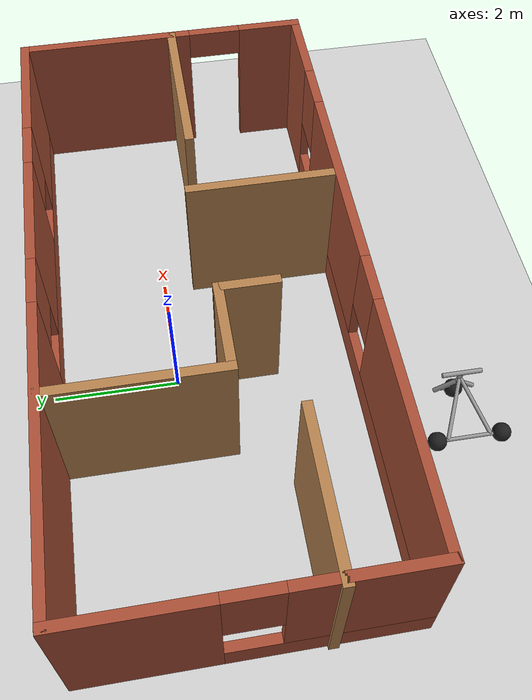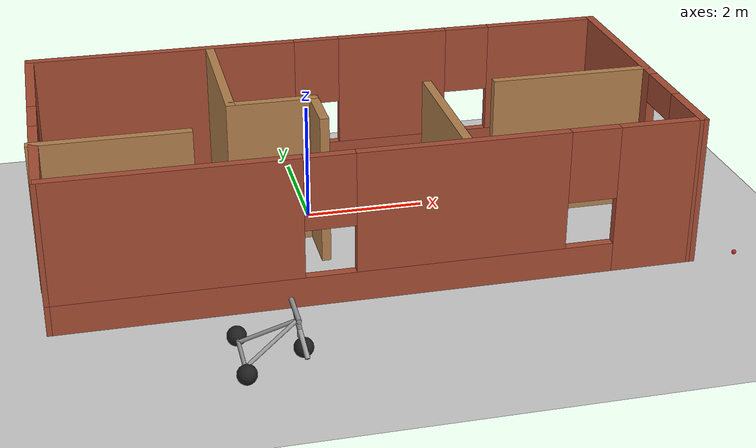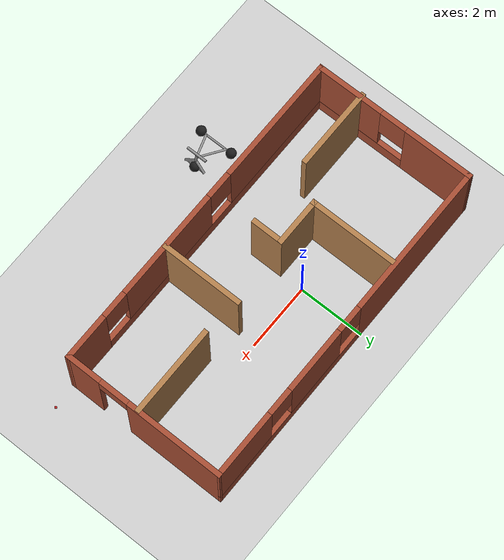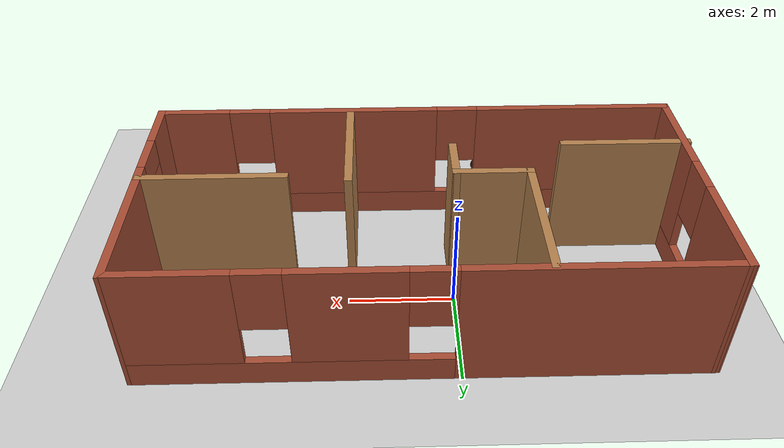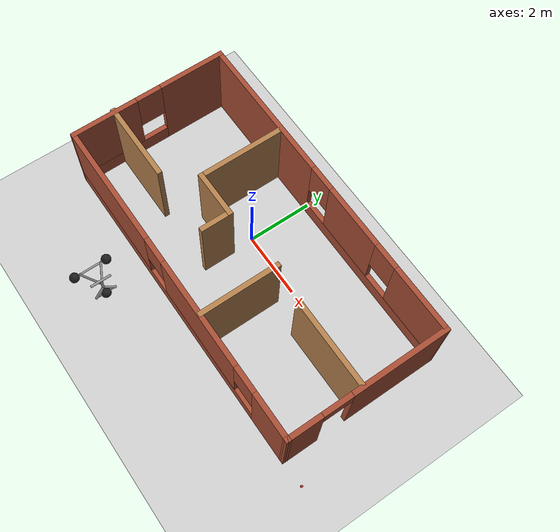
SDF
<sdf version="1.7">
 <world name="default">
  <light name="sun" type="directional">
   <pose>0 0 10 0 -0 0</pose>
   <diffuse>0.8 0.8 0.8 1</diffuse>
   <specular>0.2 0.2 0.2 1</specular>
   <attenuation>
    <range>1000</range>
    <constant>0.9</constant>
    <linear>0.01</linear>
    <quadratic>0.001</quadratic>
   </attenuation>
   <direction>-0.5 0.1 -0.9</direction>
   <spot><inner_angle>0</inner_angle><outer_angle>0</outer_angle><falloff>0</falloff></spot>
  </light>
  <model name="ground_plane">
   <static>1</static>
   <link name="link">
    <collision name="collision">
     <geometry><plane><normal>0 0 1</normal><size>100 100</size></plane></geometry>
     <surface>
      <contact><collide_bitmask>65535</collide_bitmask></contact>
      <friction><ode><mu>100</mu><mu2>50</mu2></ode></friction>
     </surface>
    </collision>
    <visual name="visual">
     <cast_shadows>0</cast_shadows>
     <geometry><plane><normal>0 0 1</normal><size>100 100</size></plane></geometry>
     <material>
      <script><uri>file://media/materials/scripts/gazebo.material</uri><name>Gazebo/Grey</name></script>
     </material>
    </visual>
   </link>
  </model>
  <gravity>0 0 -9.8</gravity>
  <magnetic_field>6e-06 2.3e-05 -4.2e-05</magnetic_field>
  <atmosphere type="adiabatic"/>
  <physics type="ode">
   <max_step_size>0.001</max_step_size>
   <real_time_factor>1</real_time_factor>
   <real_time_update_rate>1000</real_time_update_rate>
  </physics>
  <scene><ambient>0.4 0.4 0.4 1</ambient><background>0.7 0.7 0.7 1</background><shadows>1</shadows></scene>
  <audio><device>default</device></audio>
  <spherical_coordinates>
   <surface_model>EARTH_WGS84</surface_model>
   <latitude_deg>0</latitude_deg>
   <longitude_deg>0</longitude_deg>
   <elevation>0</elevation>
   <heading_deg>0</heading_deg>
  </spherical_coordinates>
  <model name="worlds">
   <pose>0.621685 -0.516372 0 0 -0 0</pose>
   <link name="Wall_0">
    <pose>-5.05689 0.005663 0 0 -0 -1.56554</pose>
    <visual name="Wall_0_Visual_0">
     <pose>-1.44652 0 1.25 0 -0 0</pose>
     <geometry><box><size>2.10695 0.15 2.5</size></box></geometry>
     <material>
      <script><uri>file://media/materials/scripts/gazebo.material</uri><name>Gazebo/Bricks</name></script>
      <ambient>1 1 1 1</ambient>
     </material>
     <meta><layer>0</layer></meta>
    </visual>
    <collision name="Wall_0_Collision_0">
     <geometry><box><size>2.10695 0.15 2.5</size></box></geometry>
     <pose>-1.44652 0 1.25 0 -0 0</pose>
    </collision>
    <visual name="Wall_0_Visual_1">
     <pose>1.05348 0 0.25 0 -0 0</pose>
     <geometry><box><size>2.89305 0.15 0.5</size></box></geometry>
     <material>
      <script><uri>file://media/materials/scripts/gazebo.material</uri><name>Gazebo/Bricks</name></script>
      <ambient>1 1 1 1</ambient>
     </material>
     <meta><layer>0</layer></meta>
    </visual>
    <collision name="Wall_0_Collision_1">
     <geometry><box><size>2.89305 0.15 0.5</size></box></geometry>
     <pose>1.05348 0 0.25 0 -0 0</pose>
    </collision>
    <visual name="Wall_0_Visual_2">
     <pose>1.45348 0 1.5 0 -0 0</pose>
     <geometry><box><size>2.09305 0.15 2</size></box></geometry>
     <material>
      <script><uri>file://media/materials/scripts/gazebo.material</uri><name>Gazebo/Bricks</name></script>
      <ambient>1 1 1 1</ambient>
     </material>
     <meta><layer>0</layer></meta>
    </visual>
    <collision name="Wall_0_Collision_2">
     <geometry><box><size>2.09305 0.15 2</size></box></geometry>
     <pose>1.45348 0 1.5 0 -0 0</pose>
    </collision>
    <visual name="Wall_0_Visual_3">
     <pose>0.006954 0 1.9 0 -0 0</pose>
     <geometry><box><size>0.8 0.15 1.2</size></box></geometry>
     <material>
      <script><uri>file://media/materials/scripts/gazebo.material</uri><name>Gazebo/Bricks</name></script>
      <ambient>1 1 1 1</ambient>
     </material>
     <meta><layer>0</layer></meta>
    </visual>
    <collision name="Wall_0_Collision_3">
     <geometry><box><size>0.8 0.15 1.2</size></box></geometry>
     <pose>0.006954 0 1.9 0 -0 0</pose>
    </collision>
   </link>
   <link name="Wall_12">
    <collision name="Wall_12_Collision">
     <geometry><box><size>2.75 0.15 2.5</size></box></geometry>
     <pose>0 0 1.25 0 -0 0</pose>
    </collision>
    <visual name="Wall_12_Visual">
     <pose>0 0 1.25 0 -0 0</pose>
     <geometry><box><size>2.75 0.15 2.5</size></box></geometry>
     <material>
      <script><uri>file://media/materials/scripts/gazebo.material</uri><name>Gazebo/Wood</name></script>
      <ambient>1 1 1 1</ambient>
     </material>
     <meta><layer>0</layer></meta>
    </visual>
    <pose>-1.98181 1.0858 0 0 -0 -1.5708</pose>
   </link>
   <link name="Wall_13">
    <collision name="Wall_13_Collision">
     <geometry><box><size>1.5 0.15 2.5</size></box></geometry>
     <pose>0 0 1.25 0 -0 0</pose>
    </collision>
    <visual name="Wall_13_Visual">
     <pose>0 0 1.25 0 -0 0</pose>
     <geometry><box><size>1.5 0.15 2.5</size></box></geometry>
     <material>
      <script><uri>file://media/materials/scripts/gazebo.material</uri><name>Gazebo/Wood</name></script>
      <ambient>1 1 1 1</ambient>
     </material>
     <meta><layer>0</layer></meta>
    </visual>
    <pose>-1.30681 -0.214205 0 0 -0 0</pose>
   </link>
   <link name="Wall_14">
    <collision name="Wall_14_Collision">
     <geometry><box><size>1 0.15 2.5</size></box></geometry>
     <pose>0 0 1.25 0 -0 0</pose>
    </collision>
    <visual name="Wall_14_Visual">
     <pose>0 0 1.25 0 -0 0</pose>
     <geometry><box><size>1 0.15 2.5</size></box></geometry>
     <material>
      <script><uri>file://media/materials/scripts/gazebo.material</uri><name>Gazebo/Wood</name></script>
      <ambient>1 1 1 1</ambient>
     </material>
     <meta><layer>0</layer></meta>
    </visual>
    <pose>-0.63181 -0.639205 0 0 -0 -1.5708</pose>
   </link>
   <link name="Wall_16">
    <collision name="Wall_16_Collision">
     <geometry><box><size>2.5 0.15 2.5</size></box></geometry>
     <pose>0 0 1.25 0 -0 0</pose>
    </collision>
    <visual name="Wall_16_Visual">
     <pose>0 0 1.25 0 -0 0</pose>
     <geometry><box><size>2.5 0.15 2.5</size></box></geometry>
     <material>
      <script><uri>file://media/materials/scripts/gazebo.material</uri><name>Gazebo/Wood</name></script>
      <ambient>1 1 1 1</ambient>
     </material>
     <meta><layer>0</layer></meta>
    </visual>
    <pose>-3.92701 -1.10149 0 0 -0 0</pose>
   </link>
   <link name="Wall_2">
    <pose>0.02945 2.42485 0 0 -0 -0.00114</pose>
    <visual name="Wall_2_Visual_0">
     <pose>-2.83096 0 1.25 0 -0 0</pose>
     <geometry><box><size>4.63303 0.15 2.5</size></box></geometry>
     <material>
      <script><uri>file://media/materials/scripts/gazebo.material</uri><name>Gazebo/Bricks</name></script>
      <ambient>1 1 1 1</ambient>
     </material>
     <meta><layer>0</layer></meta>
    </visual>
    <collision name="Wall_2_Collision_0">
     <geometry><box><size>4.63303 0.15 2.5</size></box></geometry>
     <pose>-2.83096 0 1.25 0 -0 0</pose>
    </collision>
    <visual name="Wall_2_Visual_1">
     <pose>2.31652 0 0.25 0 -0 0</pose>
     <geometry><box><size>5.66193 0.15 0.5</size></box></geometry>
     <material>
      <script><uri>file://media/materials/scripts/gazebo.material</uri><name>Gazebo/Bricks</name></script>
      <ambient>1 1 1 1</ambient>
     </material>
     <meta><layer>0</layer></meta>
    </visual>
    <collision name="Wall_2_Collision_1">
     <geometry><box><size>5.66193 0.15 0.5</size></box></geometry>
     <pose>2.31652 0 0.25 0 -0 0</pose>
    </collision>
    <visual name="Wall_2_Visual_2">
     <pose>1.27725 0 1.5 0 -0 0</pose>
     <geometry><box><size>1.9834 0.15 2</size></box></geometry>
     <material>
      <script><uri>file://media/materials/scripts/gazebo.material</uri><name>Gazebo/Bricks</name></script>
      <ambient>1 1 1 1</ambient>
     </material>
     <meta><layer>0</layer></meta>
    </visual>
    <collision name="Wall_2_Collision_2">
     <geometry><box><size>1.9834 0.15 2</size></box></geometry>
     <pose>1.27725 0 1.5 0 -0 0</pose>
    </collision>
    <visual name="Wall_2_Visual_3">
     <pose>4.10822 0 1.5 0 -0 0</pose>
     <geometry><box><size>2.07853 0.15 2</size></box></geometry>
     <material>
      <script><uri>file://media/materials/scripts/gazebo.material</uri><name>Gazebo/Bricks</name></script>
      <ambient>1 1 1 1</ambient>
     </material>
     <meta><layer>0</layer></meta>
    </visual>
    <collision name="Wall_2_Collision_3">
     <geometry><box><size>2.07853 0.15 2</size></box></geometry>
     <pose>4.10822 0 1.5 0 -0 0</pose>
    </collision>
    <visual name="Wall_2_Visual_4">
     <pose>-0.114446 0 1.9 0 -0 0</pose>
     <geometry><box><size>0.8 0.15 1.2</size></box></geometry>
     <material>
      <script><uri>file://media/materials/scripts/gazebo.material</uri><name>Gazebo/Bricks</name></script>
      <ambient>1 1 1 1</ambient>
     </material>
     <meta><layer>0</layer></meta>
    </visual>
    <collision name="Wall_2_Collision_4">
     <geometry><box><size>0.8 0.15 1.2</size></box></geometry>
     <pose>-0.114446 0 1.9 0 -0 0</pose>
    </collision>
    <visual name="Wall_2_Visual_5">
     <pose>2.66895 0 1.9 0 -0 0</pose>
     <geometry><box><size>0.8 0.15 1.2</size></box></geometry>
     <material>
      <script><uri>file://media/materials/scripts/gazebo.material</uri><name>Gazebo/Bricks</name></script>
      <ambient>1 1 1 1</ambient>
     </material>
     <meta><layer>0</layer></meta>
    </visual>
    <collision name="Wall_2_Collision_5">
     <geometry><box><size>0.8 0.15 1.2</size></box></geometry>
     <pose>2.66895 0 1.9 0 -0 0</pose>
    </collision>
   </link>
   <link name="Wall_3">
    <pose>5.10193 -0.005936 0 0 -0 -1.5708</pose>
    <visual name="Wall_3_Visual_0">
     <pose>-1.0037 0 1.25 0 -0 0</pose>
     <geometry><box><size>2.9926 0.15 2.5</size></box></geometry>
     <material>
      <script><uri>file://media/materials/scripts/gazebo.material</uri><name>Gazebo/Bricks</name></script>
      <ambient>1 1 1 1</ambient>
     </material>
     <meta><layer>0</layer></meta>
    </visual>
    <collision name="Wall_3_Collision_0">
     <geometry><box><size>2.9926 0.15 2.5</size></box></geometry>
     <pose>-1.0037 0 1.25 0 -0 0</pose>
    </collision>
    <visual name="Wall_3_Visual_1">
     <pose>1.9463 0 1.25 0 -0 0</pose>
     <geometry><box><size>1.1074 0.15 2.5</size></box></geometry>
     <material>
      <script><uri>file://media/materials/scripts/gazebo.material</uri><name>Gazebo/Bricks</name></script>
      <ambient>1 1 1 1</ambient>
     </material>
     <meta><layer>0</layer></meta>
    </visual>
    <collision name="Wall_3_Collision_1">
     <geometry><box><size>1.1074 0.15 2.5</size></box></geometry>
     <pose>1.9463 0 1.25 0 -0 0</pose>
    </collision>
    <visual name="Wall_3_Visual_2">
     <pose>0.942604 0 2.25 0 -0 0</pose>
     <geometry><box><size>0.9 0.15 0.5</size></box></geometry>
     <material>
      <script><uri>file://media/materials/scripts/gazebo.material</uri><name>Gazebo/Bricks</name></script>
      <ambient>1 1 1 1</ambient>
     </material>
     <meta><layer>0</layer></meta>
    </visual>
    <collision name="Wall_3_Collision_2">
     <geometry><box><size>0.9 0.15 0.5</size></box></geometry>
     <pose>0.942604 0 2.25 0 -0 0</pose>
    </collision>
   </link>
   <link name="Wall_4">
    <pose>0.042191 -2.42512 0 0 -0 3.14044</pose>
    <visual name="Wall_4_Visual_0">
     <pose>-4.41668 0 1.25 0 -0 0</pose>
     <geometry><box><size>1.43612 0.15 2.5</size></box></geometry>
     <material>
      <script><uri>file://media/materials/scripts/gazebo.material</uri><name>Gazebo/Bricks</name></script>
      <ambient>1 1 1 1</ambient>
     </material>
     <meta><layer>0</layer></meta>
    </visual>
    <collision name="Wall_4_Collision_0">
     <geometry><box><size>1.43612 0.15 2.5</size></box></geometry>
     <pose>-4.41668 0 1.25 0 -0 0</pose>
    </collision>
    <visual name="Wall_4_Visual_1">
     <pose>0.718061 0 0.25 0 -0 0</pose>
     <geometry><box><size>8.83336 0.15 0.5</size></box></geometry>
     <material>
      <script><uri>file://media/materials/scripts/gazebo.material</uri><name>Gazebo/Bricks</name></script>
      <ambient>1 1 1 1</ambient>
     </material>
     <meta><layer>0</layer></meta>
    </visual>
    <collision name="Wall_4_Collision_1">
     <geometry><box><size>8.83336 0.15 0.5</size></box></geometry>
     <pose>0.718061 0 0.25 0 -0 0</pose>
    </collision>
    <visual name="Wall_4_Visual_2">
     <pose>-1.21852 0 1.5 0 -0 0</pose>
     <geometry><box><size>3.3602 0.15 2</size></box></geometry>
     <material>
      <script><uri>file://media/materials/scripts/gazebo.material</uri><name>Gazebo/Bricks</name></script>
      <ambient>1 1 1 1</ambient>
     </material>
     <meta><layer>0</layer></meta>
    </visual>
    <collision name="Wall_4_Collision_2">
     <geometry><box><size>3.3602 0.15 2</size></box></geometry>
     <pose>-1.21852 0 1.5 0 -0 0</pose>
    </collision>
    <visual name="Wall_4_Visual_3">
     <pose>3.19816 0 1.5 0 -0 0</pose>
     <geometry><box><size>3.87316 0.15 2</size></box></geometry>
     <material>
      <script><uri>file://media/materials/scripts/gazebo.material</uri><name>Gazebo/Bricks</name></script>
      <ambient>1 1 1 1</ambient>
     </material>
     <meta><layer>0</layer></meta>
    </visual>
    <collision name="Wall_4_Collision_3">
     <geometry><box><size>3.87316 0.15 2</size></box></geometry>
     <pose>3.19816 0 1.5 0 -0 0</pose>
    </collision>
    <visual name="Wall_4_Visual_4">
     <pose>-3.29862 0 1.9 0 -0 0</pose>
     <geometry><box><size>0.8 0.15 1.2</size></box></geometry>
     <material>
      <script><uri>file://media/materials/scripts/gazebo.material</uri><name>Gazebo/Bricks</name></script>
      <ambient>1 1 1 1</ambient>
     </material>
     <meta><layer>0</layer></meta>
    </visual>
    <collision name="Wall_4_Collision_4">
     <geometry><box><size>0.8 0.15 1.2</size></box></geometry>
     <pose>-3.29862 0 1.9 0 -0 0</pose>
    </collision>
    <visual name="Wall_4_Visual_5">
     <pose>0.861581 0 1.9 0 -0 0</pose>
     <geometry><box><size>0.8 0.15 1.2</size></box></geometry>
     <material>
      <script><uri>file://media/materials/scripts/gazebo.material</uri><name>Gazebo/Bricks</name></script>
      <ambient>1 1 1 1</ambient>
     </material>
     <meta><layer>0</layer></meta>
    </visual>
    <collision name="Wall_4_Collision_5">
     <geometry><box><size>0.8 0.15 1.2</size></box></geometry>
     <pose>0.861581 0 1.9 0 -0 0</pose>
    </collision>
   </link>
   <link name="Wall_7">
    <collision name="Wall_7_Collision">
     <geometry><box><size>2.5 0.15 2.5</size></box></geometry>
     <pose>0 0 1.25 0 -0 0</pose>
    </collision>
    <visual name="Wall_7_Visual">
     <pose>0 0 1.25 0 -0 0</pose>
     <geometry><box><size>2.5 0.15 2.5</size></box></geometry>
     <material>
      <script><uri>file://media/materials/scripts/gazebo.material</uri><name>Gazebo/Wood</name></script>
      <ambient>1 1 1 1</ambient>
     </material>
     <meta><layer>0</layer></meta>
    </visual>
    <pose>1.32099 -1.2222 0 0 -0 1.5708</pose>
   </link>
   <link name="Wall_9">
    <collision name="Wall_9_Collision">
     <geometry><box><size>2.75 0.15 2.5</size></box></geometry>
     <pose>0 0 1.25 0 -0 0</pose>
    </collision>
    <visual name="Wall_9_Visual">
     <pose>0 0 1.25 0 -0 0</pose>
     <geometry><box><size>2.75 0.15 2.5</size></box></geometry>
     <material>
      <script><uri>file://media/materials/scripts/gazebo.material</uri><name>Gazebo/Wood</name></script>
      <ambient>1 1 1 1</ambient>
     </material>
     <meta><layer>0</layer></meta>
    </visual>
    <pose>3.77755 -0.176724 0 0 -0 3.14159</pose>
   </link>
   <static>1</static>
  </model>
  <model name="trisphere_cycle">
   <link name="frame">
    <pose>-0.408559 0 0.385023 0 -0.522021 0</pose>
    <inertial>
     <mass>10</mass>
     <inertia><ixx>0.228</ixx><iyy>0.743521</iyy><izz>0.965521</izz><ixy>0</ixy><ixz>0</ixz><iyz>0</iyz></inertia>
    </inertial>
    <collision name="axle_collision">
     <pose>-0.471335 0 0 1.5708 -0 0</pose>
     <geometry><cylinder><length>1.03923</length><radius>0.03</radius></cylinder></geometry>
    </collision>
    <visual name="axle_visual">
     <pose>-0.471335 0 0 1.5708 -0 0</pose>
     <geometry><cylinder><length>1.03923</length><radius>0.03</radius></cylinder></geometry>
     <material>
      <script><uri>file://media/materials/scripts/gazebo.material</uri><name>Gazebo/Grey</name></script>
     </material>
    </visual>
    <collision name="frame_left_collision">
     <pose>0 0.171552 0 -2.79253 1.57079 3.14159</pose>
     <geometry><cylinder><length>1.00317</length><radius>0.03</radius></cylinder></geometry>
    </collision>
    <visual name="frame_left_visual">
     <pose>0 0.171552 0 -2.79253 1.57079 3.14159</pose>
     <geometry><cylinder><length>1.00317</length><radius>0.03</radius></cylinder></geometry>
     <material>
      <script><uri>file://media/materials/scripts/gazebo.material</uri><name>Gazebo/Grey</name></script>
     </material>
    </visual>
    <collision name="frame_right_collision">
     <pose>0 -0.171552 0 2.79253 1.57079 -3.14159</pose>
     <geometry><cylinder><length>1.00317</length><radius>0.03</radius></cylinder></geometry>
    </collision>
    <visual name="frame_right_visual">
     <pose>0 -0.171552 0 2.79253 1.57079 -3.14159</pose>
     <geometry><cylinder><length>1.00317</length><radius>0.03</radius></cylinder></geometry>
     <material>
      <script><uri>file://media/materials/scripts/gazebo.material</uri><name>Gazebo/Grey</name></script>
     </material>
    </visual>
   </link>
   <link name="fork">
    <pose>0.041441 0 0.385023 0 -0.174533 0</pose>
    <inertial>
     <mass>3</mass>
     <inertia>
      <ixx>0.158203</ixx>
      <iyy>0.0583594</iyy>
      <izz>0.102656</izz>
      <ixy>0</ixy>
      <ixz>0</ixz>
      <iyz>0</iyz>
     </inertia>
    </inertial>
    <collision name="handlebars_collision">
     <pose>0 0 0.397748 1.5708 -0 0</pose>
     <geometry><cylinder><length>0.636396</length><radius>0.0375</radius></cylinder></geometry>
    </collision>
    <visual name="handlebars_visual">
     <pose>0 0 0.397748 1.5708 -0 0</pose>
     <geometry><cylinder><length>0.636396</length><radius>0.0375</radius></cylinder></geometry>
     <material>
      <script><uri>file://media/materials/scripts/gazebo.material</uri><name>Gazebo/Grey</name></script>
     </material>
    </visual>
    <collision name="headtube_collision">
     <pose>0 0 0.238649 0 -0 0</pose>
     <geometry><cylinder><length>0.318198</length><radius>0.0375</radius></cylinder></geometry>
    </collision>
    <visual name="headtube_visual">
     <pose>0 0 0.238649 0 -0 0</pose>
     <geometry><cylinder><length>0.318198</length><radius>0.0375</radius></cylinder></geometry>
     <material>
      <script><uri>file://media/materials/scripts/gazebo.material</uri><name>Gazebo/Grey</name></script>
     </material>
    </visual>
    <collision name="spindle_collision">
     <pose>0 0 -0.238649 1.5708 -0 0</pose>
     <geometry><cylinder><length>0.636396</length><radius>0.015</radius></cylinder></geometry>
    </collision>
    <visual name="spindle_visual">
     <pose>0 0 -0.238649 1.5708 -0 0</pose>
     <geometry><cylinder><length>0.636396</length><radius>0.015</radius></cylinder></geometry>
     <material>
      <script><uri>file://media/materials/scripts/gazebo.material</uri><name>Gazebo/Grey</name></script>
     </material>
    </visual>
    <collision name="fork_left_collision">
     <pose>0 0.159099 -0.07955 0.785398 -0 0</pose>
     <geometry><cylinder><length>0.45</length><radius>0.0375</radius></cylinder></geometry>
    </collision>
    <visual name="fork_left_visual">
     <pose>0 0.159099 -0.07955 0.785398 -0 0</pose>
     <geometry><cylinder><length>0.45</length><radius>0.0375</radius></cylinder></geometry>
     <material>
      <script><uri>file://media/materials/scripts/gazebo.material</uri><name>Gazebo/Grey</name></script>
     </material>
    </visual>
    <collision name="fork_right_collision">
     <pose>0 -0.159099 -0.07955 -0.785398 0 0</pose>
     <geometry><cylinder><length>0.45</length><radius>0.0375</radius></cylinder></geometry>
    </collision>
    <visual name="fork_right_visual">
     <pose>0 -0.159099 -0.07955 -0.785398 0 0</pose>
     <geometry><cylinder><length>0.45</length><radius>0.0375</radius></cylinder></geometry>
     <material>
      <script><uri>file://media/materials/scripts/gazebo.material</uri><name>Gazebo/Grey</name></script>
     </material>
    </visual>
   </link>
   <link name="wheel_front">
    <pose>0.082882 0 0.15 0 -0 0</pose>
    <inertial>
     <mass>0.5</mass>
     <inertia><ixx>0.0045</ixx><iyy>0.0045</iyy><izz>0.0045</izz><ixy>0</ixy><ixz>0</ixz><iyz>0</iyz></inertia>
    </inertial>
    <collision name="collision">
     <geometry><sphere><radius>0.15</radius></sphere></geometry>
     <surface><contact><ode><kp>1e+08</kp><kd>1</kd><min_depth>0.0005</min_depth></ode></contact></surface>
    </collision>
    <visual name="visual">
     <geometry><sphere><radius>0.15</radius></sphere></geometry>
     <material>
      <script><uri>file://media/materials/scripts/gazebo.material</uri><name>Gazebo/Black</name></script>
     </material>
    </visual>
   </link>
   <joint name="wheel_front_steer" type="revolute">
    <parent>frame</parent>
    <child>fork</child>
    <axis>
     <xyz>0 0 1</xyz>
     <limit><lower>-0.959931</lower><upper>0.959931</upper></limit>
     <dynamics><spring_reference>0</spring_reference><spring_stiffness>0</spring_stiffness></dynamics>
    </axis>
   </joint>
   <joint name="wheel_front_spin" type="revolute">
    <parent>fork</parent>
    <child>wheel_front</child>
    <axis>
     <xyz>0 1 0</xyz>
     <limit><lower>-1e+16</lower><upper>1e+16</upper></limit>
     <dynamics><spring_reference>0</spring_reference><spring_stiffness>0</spring_stiffness></dynamics>
    </axis>
   </joint>
   <link name="wheel_rear_left">
    <pose>-0.817118 0.519615 0.15 0 -0 0</pose>
    <inertial>
     <mass>0.5</mass>
     <inertia><ixx>0.0045</ixx><iyy>0.0045</iyy><izz>0.0045</izz><ixy>0</ixy><ixz>0</ixz><iyz>0</iyz></inertia>
    </inertial>
    <collision name="collision">
     <geometry><sphere><radius>0.15</radius></sphere></geometry>
     <surface><contact><ode><kp>1e+08</kp><kd>1</kd><min_depth>0.0005</min_depth></ode></contact></surface>
    </collision>
    <visual name="visual">
     <geometry><sphere><radius>0.15</radius></sphere></geometry>
     <material>
      <script><uri>file://media/materials/scripts/gazebo.material</uri><name>Gazebo/Black</name></script>
     </material>
    </visual>
   </link>
   <joint name="wheel_rear_left_spin" type="revolute">
    <parent>frame</parent>
    <child>wheel_rear_left</child>
    <axis>
     <xyz>0 1 0</xyz>
     <limit><lower>-1e+16</lower><upper>1e+16</upper></limit>
     <dynamics><spring_reference>0</spring_reference><spring_stiffness>0</spring_stiffness></dynamics>
    </axis>
   </joint>
   <link name="wheel_rear_right">
    <pose>-0.817118 -0.519615 0.15 0 -0 0</pose>
    <inertial>
     <mass>0.5</mass>
     <inertia><ixx>0.0045</ixx><iyy>0.0045</iyy><izz>0.0045</izz><ixy>0</ixy><ixz>0</ixz><iyz>0</iyz></inertia>
    </inertial>
    <collision name="collision">
     <geometry><sphere><radius>0.15</radius></sphere></geometry>
     <surface><contact><ode><kp>1e+08</kp><kd>1</kd><min_depth>0.0005</min_depth></ode></contact></surface>
    </collision>
    <visual name="visual">
     <geometry><sphere><radius>0.15</radius></sphere></geometry>
     <material>
      <script><uri>file://media/materials/scripts/gazebo.material</uri><name>Gazebo/Black</name></script>
     </material>
    </visual>
   </link>
   <joint name="wheel_rear_right_spin" type="revolute">
    <parent>frame</parent>
    <child>wheel_rear_right</child>
    <axis>
     <xyz>0 1 0</xyz>
     <limit><lower>-1e+16</lower><upper>1e+16</upper></limit>
     <dynamics><spring_reference>0</spring_reference><spring_stiffness>0</spring_stiffness></dynamics>
    </axis>
   </joint>
   <pose>-0.973348 -4.37821 -0.000501 -0 1e-06 -0.000446</pose>
  </model>
  <model name="cricket_ball">
   <link name="link">
    <pose>0 0 0.0375 0 -0 0</pose>
    <inertial>
     <mass>0.1467</mass>
     <inertia>
      <ixx>8.25187e-05</ixx>
      <ixy>0</ixy>
      <ixz>0</ixz>
      <iyy>8.25187e-05</iyy>
      <iyz>0</iyz>
      <izz>8.25187e-05</izz>
     </inertia>
    </inertial>
    <collision name="collision">
     <geometry><sphere><radius>0.0375</radius></sphere></geometry>
     <surface>
      <contact>
       <poissons_ratio>0.347</poissons_ratio>
       <elastic_modulus>8.8e+09</elastic_modulus>
       <ode><kp>100000</kp><kd>100</kd><max_vel>100</max_vel><min_depth>0.001</min_depth></ode>
      </contact>
      <friction>
       <torsional>
        <coefficient>1</coefficient>
        <use_patch_radius>0</use_patch_radius>
        <surface_radius>0.01</surface_radius>
       </torsional>
      </friction>
     </surface>
    </collision>
    <visual name="visual">
     <geometry><sphere><radius>0.0375</radius></sphere></geometry>
     <material>
      <script><uri>file://media/materials/scripts/gazebo.material</uri><name>Gazebo/Red</name></script>
     </material>
    </visual>
    <velocity_decay><linear>0</linear><angular>0.005</angular></velocity_decay>
   </link>
   <pose>6.53657 -2.94562 -0.001014 0 -0 0</pose>
  </model>
 </world>
</sdf>
